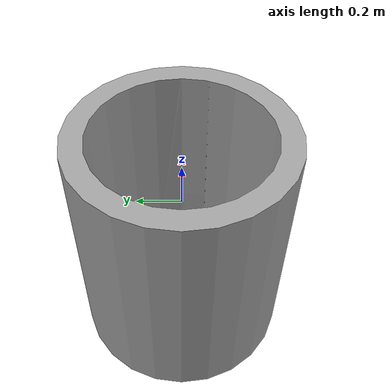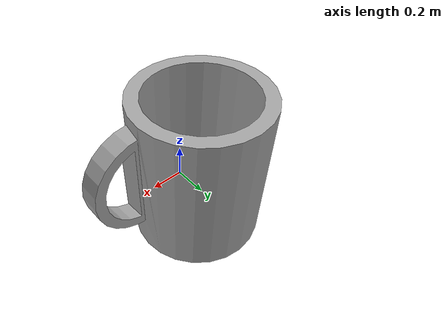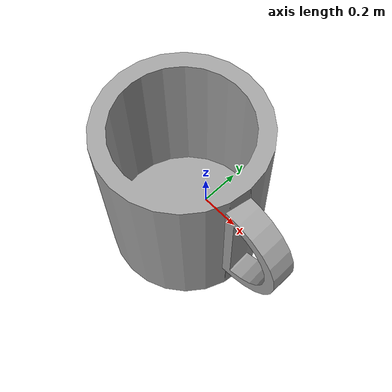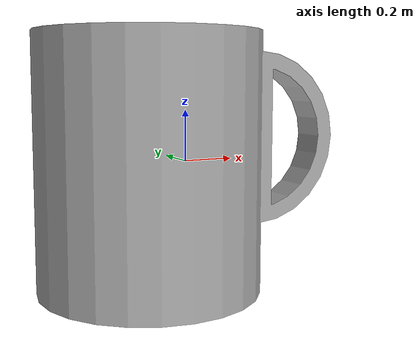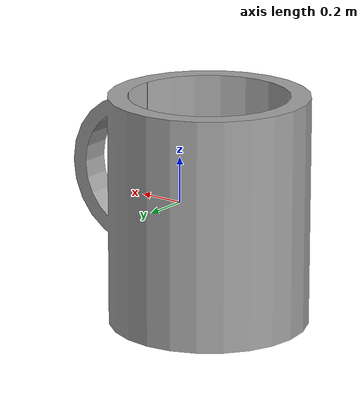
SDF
<?xml version="1.0" ?>
<sdf version="1.5">
  <model name='cup2'>
    <pose>0 0 0 0 0 0</pose>
    <static>1</static>
    <link name='body'>
      <collision name="cup2-coll">
        <pose>0 0 -0.5 0 0 0</pose>
        <geometry>
          <mesh>
            <uri>model://cup2/meshes/cup2.dae</uri>
          </mesh>
        </geometry>
      </collision>
      <visual name='cup2'>
        <cast_shadows>1</cast_shadows>
        <pose>0 0 -0.5 0 0 0</pose>
        <geometry>
          <mesh>
            <uri>model://cup2/meshes/cup2.dae</uri>
          </mesh>
        </geometry>
      </visual>
      <velocity_decay>
        <linear>0</linear>
        <angular>0</angular>
      </velocity_decay>
      <self_collide>0</self_collide>
      <kinematic>0</kinematic>
      <gravity>1</gravity>
    </link>
  </model>

</sdf>
